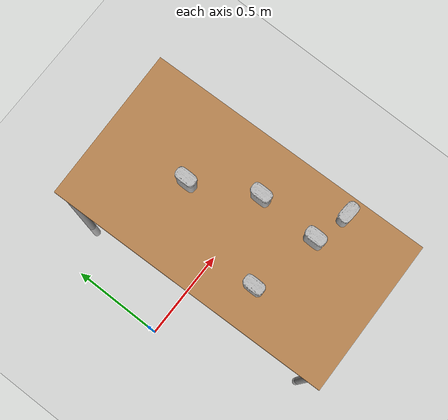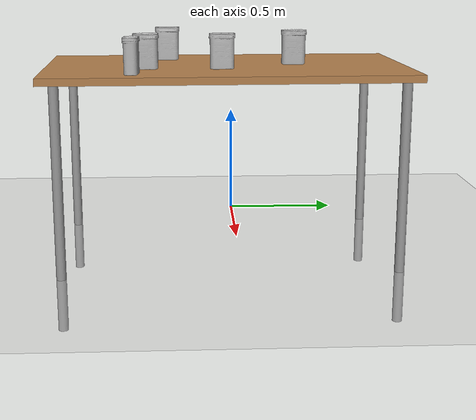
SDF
<sdf version="1.7">
 <world name="default">
  <light name="sun" type="directional">
   <pose>0 0 10 0 -0 0</pose>
   <diffuse>0.8 0.8 0.8 1</diffuse>
   <specular>0.2 0.2 0.2 1</specular>
   <attenuation>
    <range>1000</range>
    <constant>0.9</constant>
    <linear>0.01</linear>
    <quadratic>0.001</quadratic>
   </attenuation>
   <direction>-0.5 0.1 -0.9</direction>
   <spot><inner_angle>0</inner_angle><outer_angle>0</outer_angle><falloff>0</falloff></spot>
  </light>
  <model name="ground_plane">
   <static>1</static>
   <link name="link">
    <collision name="collision">
     <geometry><plane><normal>0 0 1</normal><size>100 100</size></plane></geometry>
     <surface><friction><ode><mu>100</mu><mu2>50</mu2></ode></friction></surface>
    </collision>
    <visual name="visual">
     <cast_shadows>0</cast_shadows>
     <geometry><plane><normal>0 0 1</normal><size>100 100</size></plane></geometry>
     <material>
      <script><uri>file://media/materials/scripts/gazebo.material</uri><name>Gazebo/Grey</name></script>
     </material>
    </visual>
   </link>
  </model>
  <gravity>0 0 -9.8</gravity>
  <magnetic_field>6e-06 2.3e-05 -4.2e-05</magnetic_field>
  <atmosphere type="adiabatic"/>
  <physics type="ode">
   <max_step_size>0.001</max_step_size>
   <real_time_factor>1</real_time_factor>
   <real_time_update_rate>1000</real_time_update_rate>
  </physics>
  <scene><ambient>0.4 0.4 0.4 1</ambient><background>0.7 0.7 0.7 1</background><shadows>1</shadows></scene>
  <audio><device>default</device></audio>
  <spherical_coordinates>
   <surface_model>EARTH_WGS84</surface_model>
   <latitude_deg>0</latitude_deg>
   <longitude_deg>0</longitude_deg>
   <elevation>0</elevation>
   <heading_deg>0</heading_deg>
  </spherical_coordinates>
  <model name="table">
   <static>1</static>
   <link name="link">
    <collision name="surface">
     <pose>0 0 1 0 -0 0</pose>
     <geometry><box><size>1.5 0.8 0.03</size></box></geometry>
     <surface><friction><ode><mu>0.6</mu><mu2>0.6</mu2></ode></friction></surface>
    </collision>
    <visual name="visual1">
     <pose>0 0 1 0 -0 0</pose>
     <geometry><box><size>1.5 0.8 0.03</size></box></geometry>
     <material>
      <script><uri>file://media/materials/scripts/gazebo.material</uri><name>Gazebo/Wood</name></script>
     </material>
    </visual>
    <collision name="front_left_leg">
     <pose>0.68 0.38 0.5 0 -0 0</pose>
     <geometry><cylinder><radius>0.02</radius><length>1</length></cylinder></geometry>
    </collision>
    <visual name="front_left_leg">
     <pose>0.68 0.38 0.5 0 -0 0</pose>
     <geometry><cylinder><radius>0.02</radius><length>1</length></cylinder></geometry>
     <material>
      <script><uri>file://media/materials/scripts/gazebo.material</uri><name>Gazebo/Grey</name></script>
     </material>
    </visual>
    <collision name="front_right_leg">
     <pose>0.68 -0.38 0.5 0 -0 0</pose>
     <geometry><cylinder><radius>0.02</radius><length>1</length></cylinder></geometry>
    </collision>
    <visual name="front_right_leg">
     <pose>0.68 -0.38 0.5 0 -0 0</pose>
     <geometry><cylinder><radius>0.02</radius><length>1</length></cylinder></geometry>
     <material>
      <script><uri>file://media/materials/scripts/gazebo.material</uri><name>Gazebo/Grey</name></script>
     </material>
    </visual>
    <collision name="back_right_leg">
     <pose>-0.68 -0.38 0.5 0 -0 0</pose>
     <geometry><cylinder><radius>0.02</radius><length>1</length></cylinder></geometry>
    </collision>
    <visual name="back_right_leg">
     <pose>-0.68 -0.38 0.5 0 -0 0</pose>
     <geometry><cylinder><radius>0.02</radius><length>1</length></cylinder></geometry>
     <material>
      <script><uri>file://media/materials/scripts/gazebo.material</uri><name>Gazebo/Grey</name></script>
     </material>
    </visual>
    <collision name="back_left_leg">
     <pose>-0.68 0.38 0.5 0 -0 0</pose>
     <geometry><cylinder><radius>0.02</radius><length>1</length></cylinder></geometry>
    </collision>
    <visual name="back_left_leg">
     <pose>-0.68 0.38 0.5 0 -0 0</pose>
     <geometry><cylinder><radius>0.02</radius><length>1</length></cylinder></geometry>
     <material>
      <script><uri>file://media/materials/scripts/gazebo.material</uri><name>Gazebo/Grey</name></script>
     </material>
    </visual>
   </link>
   <pose>0.628743 -0.054706 -0.216115 0 0 -1.54736</pose>
  </model>
  <plugin name="gazebo_link_attacher" filename="libgazebo_link_attacher.so"/>
  <plugin name="gazebo_ros_init" filename="libgazebo_ros_init.so"/>
  <plugin name="gazebo_ros_factory" filename="libgazebo_ros_factory.so"/>
  <model name="STEAK_SET">
   <link name="link_0">
    <visual name="visual">
     <geometry>
      <mesh>
       <uri>/home/group11/.ignition/fuel/fuel.ignitionrobotics.org/googleresearch/models/steak_set/1/meshes/model.obj</uri>
      </mesh>
     </geometry>
    </visual>
    <collision name="collision_0">
     <geometry>
      <mesh>
       <uri>/home/group11/.ignition/fuel/fuel.ignitionrobotics.org/googleresearch/models/steak_set/1/meshes/model.obj</uri>
      </mesh>
     </geometry>
    </collision>
    <inertial>
     <inertia><ixx>1</ixx><ixy>0</ixy><ixz>0</ixz><iyy>1</iyy><iyz>0</iyz><izz>1</izz></inertia>
     <mass>1</mass>
    </inertial>
   </link>
   <pose>0.938892 -0.433646 0.799969 -0.006999 0.008384 -1.62853</pose>
  </model>
  <model name="Room_Essentials_Mug_White_Yellow">
   <link name="link_0">
    <visual name="visual">
     <geometry>
      <mesh>
       <uri>/home/group11/.ignition/fuel/fuel.ignitionrobotics.org/googleresearch/models/room_essentials_mug_white_yellow/1/meshes/model.obj</uri>
      </mesh>
     </geometry>
    </visual>
    <collision name="collision_0">
     <geometry>
      <mesh>
       <uri>/home/group11/.ignition/fuel/fuel.ignitionrobotics.org/googleresearch/models/room_essentials_mug_white_yellow/1/meshes/model.obj</uri>
      </mesh>
     </geometry>
    </collision>
    <inertial>
     <inertia><ixx>1</ixx><ixy>0</ixy><ixz>0</ixz><iyy>1</iyy><iyz>0</iyz><izz>1</izz></inertia>
     <mass>1</mass>
    </inertial>
   </link>
   <pose>0.762425 -0.385573 0.798613 0.003989 0.021202 0.001047</pose>
  </model>
  <model name="Room_Essentials_Bowl_Turquiose">
   <link name="link_0">
    <visual name="visual">
     <geometry>
      <mesh>
       <uri>/home/group11/.ignition/fuel/fuel.ignitionrobotics.org/googleresearch/models/room_essentials_bowl_turquiose/1/meshes/model.obj</uri>
      </mesh>
     </geometry>
    </visual>
    <collision name="collision_0">
     <geometry>
      <mesh>
       <uri>/home/group11/.ignition/fuel/fuel.ignitionrobotics.org/googleresearch/models/room_essentials_bowl_turquiose/1/meshes/model.obj</uri>
      </mesh>
     </geometry>
    </collision>
    <inertial>
     <inertia><ixx>1</ixx><ixy>0</ixy><ixz>0</ixz><iyy>1</iyy><iyz>0</iyz><izz>1</izz></inertia>
     <mass>1</mass>
    </inertial>
   </link>
   <pose>0.616797 0.230537 0.798673 -0.009234 0.015953 -0.001282</pose>
  </model>
  <model name="Magnifying_Glassassrt">
   <link name="link_0">
    <visual name="visual">
     <geometry>
      <mesh>
       <uri>/home/group11/.ignition/fuel/fuel.ignitionrobotics.org/googleresearch/models/magnifying_glassassrt/1/meshes/model.obj</uri>
      </mesh>
     </geometry>
    </visual>
    <collision name="collision_0">
     <geometry>
      <mesh>
       <uri>/home/group11/.ignition/fuel/fuel.ignitionrobotics.org/googleresearch/models/magnifying_glassassrt/1/meshes/model.obj</uri>
      </mesh>
     </geometry>
    </collision>
    <inertial>
     <inertia><ixx>1</ixx><ixy>0</ixy><ixz>0</ixz><iyy>1</iyy><iyz>0</iyz><izz>1</izz></inertia>
     <mass>1</mass>
    </inertial>
   </link>
   <pose>0.770992 -0.076952 0.798975 -0.001134 -0.001218 -3.4e-05</pose>
  </model>
  <model name="TOOL_BELT">
   <link name="link_0">
    <visual name="visual">
     <geometry>
      <mesh>
       <uri>/home/group11/.ignition/fuel/fuel.ignitionrobotics.org/googleresearch/models/tool_belt/1/meshes/model.obj</uri>
      </mesh>
     </geometry>
    </visual>
    <collision name="collision_0">
     <geometry>
      <mesh>
       <uri>/home/group11/.ignition/fuel/fuel.ignitionrobotics.org/googleresearch/models/tool_belt/1/meshes/model.obj</uri>
      </mesh>
     </geometry>
    </collision>
    <inertial>
     <inertia><ixx>1</ixx><ixy>0</ixy><ixz>0</ixz><iyy>1</iyy><iyz>0</iyz><izz>1</izz></inertia>
     <mass>1</mass>
    </inertial>
   </link>
   <pose>0.427837 -0.303477 0.798643 0.001368 -0.008636 -9e-06</pose>
  </model>
 </world>
</sdf>
